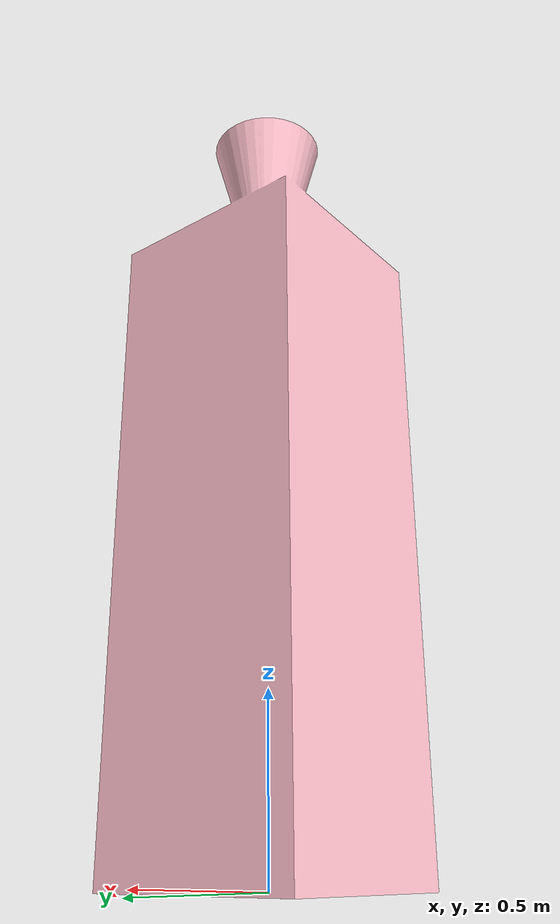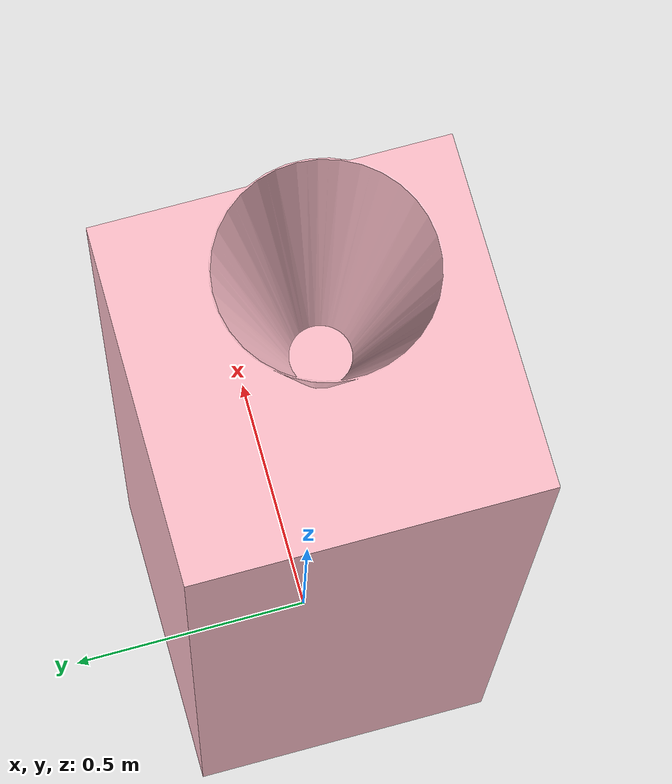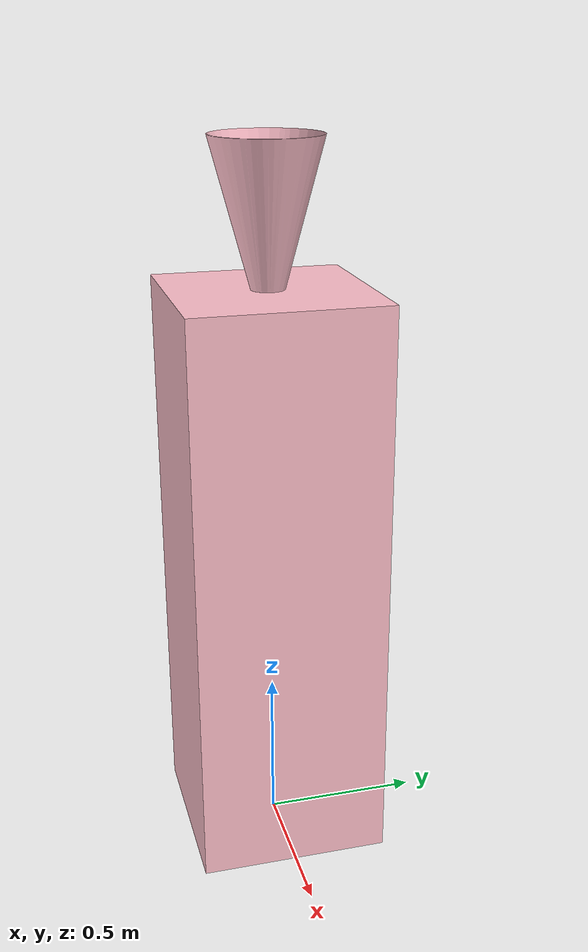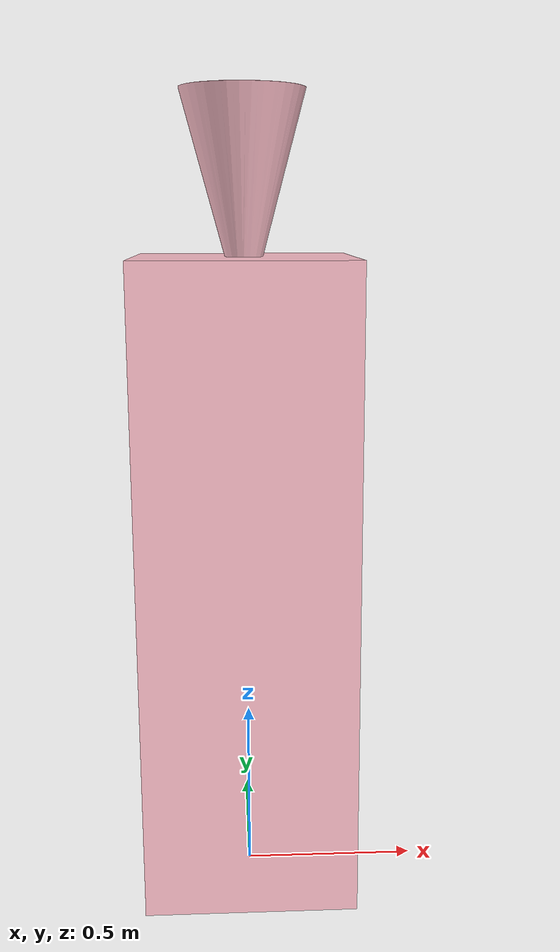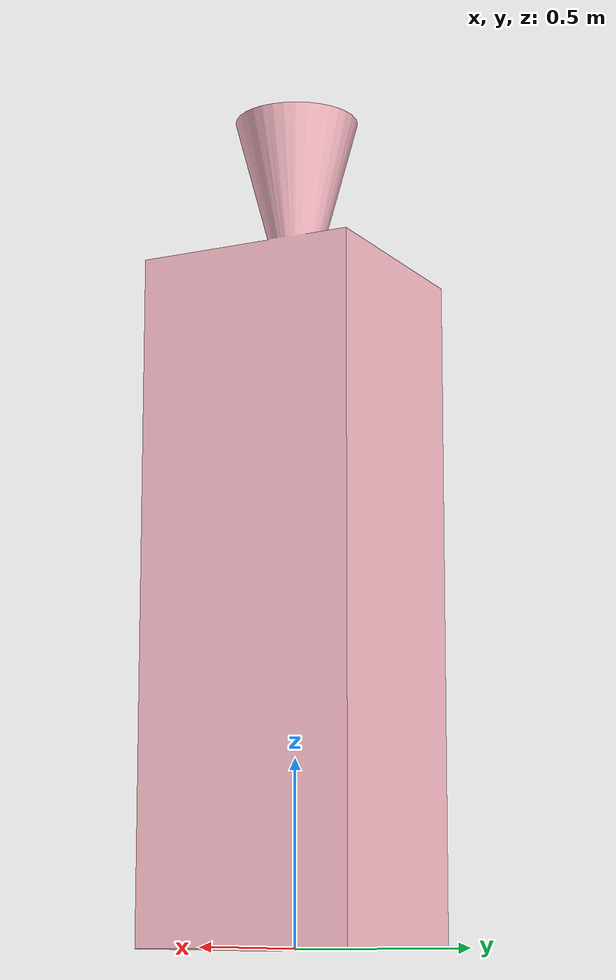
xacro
<?xml version="1.0"?>
<robot name="hopper_long" xmlns:xacro="http://wiki.ros.org/xacro">
  <xacro:include filename="$(find hopper_long)/urdf/hopper_long_macro.xacro"/>
  <xacro:hopper_long prefix=""/>

  <xacro:property name="h_offset" value="0.1" />
  <xacro:property name="h_hopper" value="2.286" /> <!-- 82 inch = 2.0828 m, 90 inch = 2.286 m -->
  <xacro:property name="r_hopper" value="0.25" />
  <xacro:property name="theta" value="${-45.0/180.0*pi}" /> <!-- rotation around z axis angle (rad)  -->

  <!-- Pouring point xyz -->
  <xacro:property name="x_pouring_point" value="${r_hopper * cos(theta)}" />
  <xacro:property name="y_pouring_point" value="${r_hopper * sin(theta)}" />
  <xacro:property name="z_pouring_point" value="${h_hopper + h_offset}" />

  <!-- Pouring point RPY -->
  <xacro:property name="R_pouring_point" value="${90.0/180.0*pi}" />
  <xacro:property name="P_pouring_point" value="${0.0/180.0*pi}" />
  <xacro:property name="Y_pouring_point" value="${theta}" />

  <link name="hopper_long_base_plate">
  </link>

  <link name="hopper_long_pouring_point">
  </link>

  <joint name="hopper_long_base_plate" type="fixed">
    <parent link="hopper_long_base_plate"/>
    <child link="hopper_long_base_link"/>
    <origin rpy="0 0 0" xyz="0 0 0"/>
  </joint>

  <joint name="hopper_long_pouring_point" type="fixed">
    <parent link="hopper_long_base_link"/>
    <child link="hopper_long_pouring_point"/>
    <origin xyz="${x_pouring_point} ${y_pouring_point} ${z_pouring_point}" rpy="${R_pouring_point} ${P_pouring_point} ${Y_pouring_point}"/>
  </joint>

</robot>

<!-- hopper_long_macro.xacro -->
<robot xmlns:xacro="http://wiki.ros.org/xacro">

  <xacro:macro name="hopper_long" params="prefix">

    <link name="${prefix}hopper_long_base_link">
      <inertial>
      <origin
        xyz="0 0 0.92358"
        rpy="0 0 0" />
      <mass
        value="686.2" />
      <inertia
        ixx="215.53"
        ixy="1.1915E-15"
        ixz="2.2567E-15"
        iyy="215.53"
        iyz="-1.0997E-15"
        izz="42.463" />
    </inertial>
    <visual>
      <origin
        xyz="0 0 0"
        rpy="0 0 0" />
      <geometry>
        <mesh
          filename="package://hopper_long/meshes/hopper_long_base_link.STL" />
      </geometry>
      <material
        name="">
        <color
          rgba="1 0.75294 0.796 1" />
      </material>
    </visual>
    <collision>
      <origin
        xyz="0 0 0"
        rpy="0 0 0" />
      <geometry>
        <mesh
          filename="package://hopper_long/meshes/hopper_long_base_link.STL" />
      </geometry>
    </collision>
    </link>

  </xacro:macro>

</robot>
